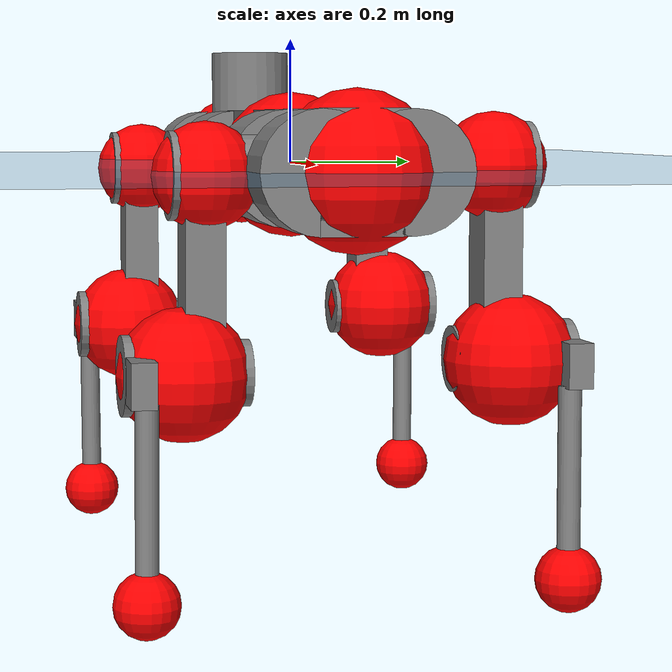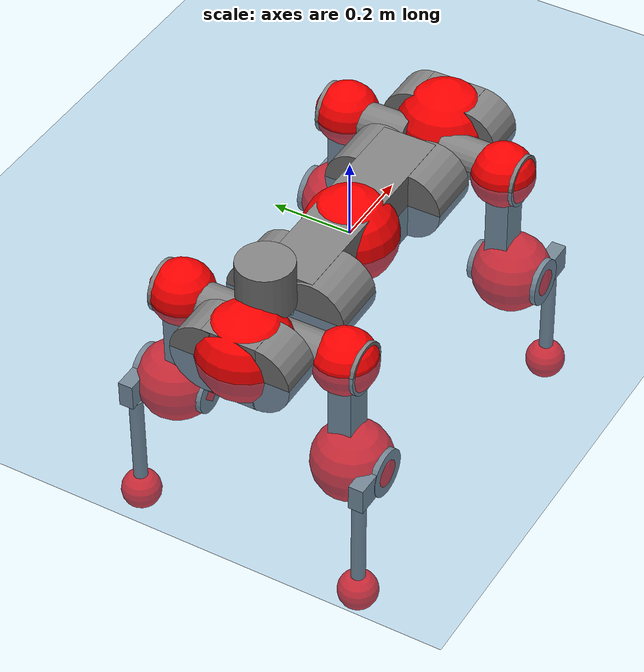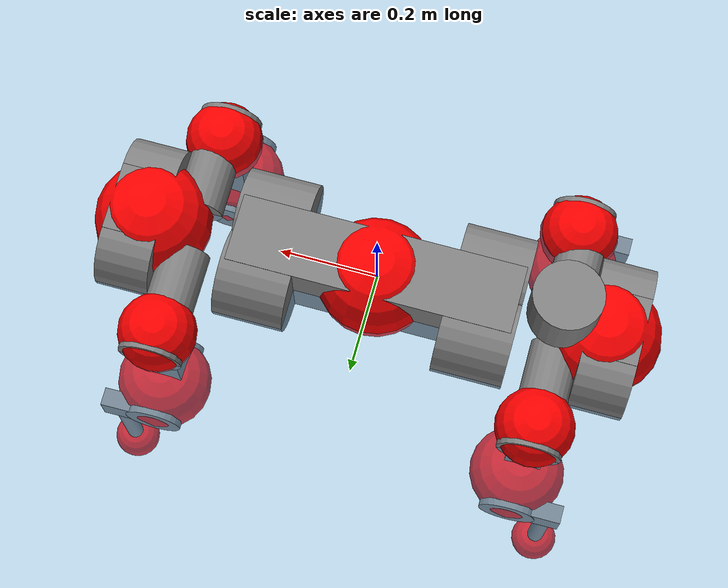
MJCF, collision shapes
<mujoco model="anymal_c">
  <compiler angle="radian" assetdir="assets" balanceinertia="true" inertiafromgeom="false"/>

  <option timestep="0.005" density="1.2" viscosity="2e-05"/>

  <size nkey="1"/>

  <visual>
    <quality shadowsize="8192"/>
    <map shadowclip="0.5"/>
  </visual>

  <default>
    <default class="/">
      <material specular="0" shininess="0.25"/>
      <geom contype="0" conaffinity="0" group="1" solref="-1000 -80"/>
      <site size="0.01 0.005 0.005" group="5"/>
      <general forcelimited="true" forcerange="-80 80" biastype="affine" gainprm="80" biasprm="0 -80 -2"/>
      <default class="anymal_c">
        <joint armature="0.01" damping="0.01" frictionloss="0.1"/>
        <default class="visual">
          <geom type="mesh" group="2"/>
          <default class="visual_zflip"/>
        </default>
        <default class="collision">
          <geom type="cylinder" group="3"/>
          <default class="foot">
            <geom size="0.03 0 0" type="sphere" condim="6" priority="1" friction="0.8 0.02 0.01" solimp="0.015 1 0.03"/>
          </default>
        </default>
      </default>
      <default class="reward_collision_sphere">
        <geom group="5" rgba="1 0 0 1"/>
      </default>
    </default>
  </default>

  <asset>
    <texture type="skybox" colorspace="auto" name="//unnamed_texture_0" builtin="gradient" rgb1="0.95 0.95 0.95" rgb2="0.95 0.95 0.95" width="100" height="600"/>
    <texture type="2d" colorspace="auto" name="texplane" builtin="checker" rgb1="0.345 0.575 0.748" rgb2="0.345 0.575 0.748" markrgb="1 1 1" width="512" height="512"/>
    <texture type="2d" colorspace="linear" name="base" file="base.png"/>
    <texture type="2d" colorspace="linear" name="top_shell" file="top_shell.png"/>
    <texture type="2d" colorspace="linear" name="bottom_shell" file="bottom_shell.png"/>
    <texture type="2d" colorspace="linear" name="remote" file="remote.png"/>
    <texture type="2d" colorspace="linear" name="hatch" file="hatch.png"/>
    <texture type="2d" colorspace="linear" name="handle" file="handle.png"/>
    <texture type="2d" colorspace="linear" name="face" file="face.png"/>
    <texture type="2d" colorspace="linear" name="battery" file="battery.png"/>
    <texture type="2d" colorspace="linear" name="lidar_cage" file="lidar_cage.png"/>
    <texture type="2d" colorspace="linear" name="depth_camera" file="depth_camera.png"/>
    <texture type="2d" colorspace="linear" name="wide_angle_camera" file="wide_angle_camera.png"/>
    <texture type="2d" colorspace="linear" name="lidar" file="lidar.png"/>
    <texture type="2d" colorspace="linear" name="drive" file="drive.png"/>
    <texture type="2d" colorspace="linear" name="hip_l" file="hip_l.png"/>
    <texture type="2d" colorspace="linear" name="shank_l" file="shank_l.png"/>
    <texture type="2d" colorspace="linear" name="foot" file="foot.png"/>
    <texture type="2d" colorspace="linear" name="thigh" file="thigh.png"/>
    <texture type="2d" colorspace="linear" name="shank_r" file="shank_r.png"/>
    <texture type="2d" colorspace="linear" name="hip_r" file="hip_r.png"/>
    <material name="MatPlane" class="/" texture="texplane" texuniform="true" texrepeat="2 2" specular="0.9" shininess="0.5"/>
    <material name="black_plastic" class="/" rgba="0.007 0.007 0.007 1"/>
    <material name="green" class="/" rgba="0.052 0.178 0.033 1"/>
    <material name="red" class="/" rgba="0.178 0.006 0.005 1"/>
    <material name="yellow" class="/" rgba="0.178 0.119 0.006 1"/>
    <material name="lwl" class="/" rgba="0.8 0.8 0.8 1"/>
    <material name="base" class="/" texture="base"/>
    <material name="top_shell" class="/" texture="top_shell"/>
    <material name="bottom_shell" class="/" texture="bottom_shell"/>
    <material name="hip_l" class="/" texture="hip_l"/>
    <material name="thigh" class="/" texture="thigh"/>
    <material name="shank_l" class="/" texture="shank_l"/>
    <material name="foot" class="/" texture="foot"/>
    <material name="hip_r" class="/" texture="hip_r"/>
    <material name="shank" class="/" texture="shank_r"/>
    <material name="hatch" class="/" texture="hatch"/>
    <material name="remote" class="/" texture="remote"/>
    <material name="handle" class="/" texture="handle"/>
    <material name="face" class="/" texture="face"/>
    <material name="depth_camera" class="/" texture="depth_camera"/>
    <material name="wide_angle_camera" class="/" texture="wide_angle_camera"/>
    <material name="battery" class="/" texture="battery"/>
    <material name="lidar_cage" class="/" texture="lidar_cage"/>
    <material name="lidar" class="/" texture="lidar"/>
    <material name="drive" class="/" texture="drive"/>
    <mesh name="base_0" class="/" file="base_0.obj"/>
    <mesh name="base_1" class="/" file="base_1.obj"/>
    <mesh name="base_2" class="/" file="base_2.obj"/>
    <mesh name="base_3" class="/" file="base_3.obj"/>
    <mesh name="base_4" class="/" file="base_4.obj"/>
    <mesh name="base_5" class="/" file="base_5.obj"/>
    <mesh name="top_shell" class="/" file="top_shell.obj"/>
    <mesh name="bottom_shell" class="/" file="bottom_shell.obj"/>
    <mesh name="remote" class="/" file="remote.obj"/>
    <mesh name="handle" class="/" file="handle.obj"/>
    <mesh name="face" class="/" file="face.obj"/>
    <mesh name="wide_angle_camera" class="/" file="wide_angle_camera.obj"/>
    <mesh name="depth_camera" class="/" file="depth_camera.obj"/>
    <mesh name="battery" class="/" file="battery.obj"/>
    <mesh name="lidar_cage" class="/" file="lidar_cage.obj"/>
    <mesh name="lidar" class="/" file="lidar.obj"/>
    <mesh name="drive" class="/" file="drive.obj"/>
    <mesh name="hip_l" class="/" file="hip_l.obj"/>
    <mesh name="thigh" class="/" file="thigh.obj"/>
    <mesh name="shank_l" class="/" file="shank_l.obj"/>
    <mesh name="foot" class="/" file="foot.obj"/>
    <mesh name="hip_r" class="/" file="hip_r.obj"/>
    <mesh name="hatch" class="/" file="hatch.obj"/>
    <mesh name="shank_r" class="/" file="shank_r.obj"/>
  </asset>

  <worldbody>
    <geom name="floor" class="/" size="100 100 0.125" type="plane" group="0" material="MatPlane"/>
    <light name="toplight_shadow" class="/" pos="0 0 5" dir="0.0990148 0.0990148 -0.990148" type="directional" ambient="0.04 0.04 0.04" diffuse="0.55 0.55 0.55" specular="0.12 0.12 0.12"/>
    <light name="toplight_fill" class="/" pos="0 0 5" dir="0.0990148 0.0990148 -0.990148" type="directional" castshadow="false" ambient="0.04 0.04 0.04" diffuse="0.3 0.3 0.3" specular="0.08 0.08 0.08"/>
    <body name="trunk" childclass="anymal_c" pos="0.00249584 0.00107283 -0.00376748" quat="0.999997 5.86607e-05 -0.00207421 0.00140776">
      <inertial pos="0.0161179 0.0104395 0.0554339" quat="0.50288 0.501446 0.503938 0.49164" mass="15.8177" diaginertia="0.738463 0.437607 0.222727"/>
      <joint name="//unnamed_joint_0" type="free" armature="0" damping="0" frictionloss="0"/>
      <geom name="//unnamed_geom_1" class="visual" material="green" mesh="base_0"/>
      <geom name="//unnamed_geom_2" class="visual" material="yellow" mesh="base_1"/>
      <geom name="//unnamed_geom_3" class="visual" material="red" mesh="base_2"/>
      <geom name="//unnamed_geom_4" class="visual" material="black_plastic" mesh="base_3"/>
      <geom name="//unnamed_geom_5" class="visual" material="lwl" mesh="base_4"/>
      <geom name="//unnamed_geom_6" class="visual" material="base" mesh="base_5"/>
      <geom name="trunk_1" class="collision" size="0.286912 0.0692547 0.0890418" type="box"/>
      <geom name="trunk_2" class="collision" size="0.0890418 0.0717281" pos="0.223067 0.065405 0" quat="0.707107 0 0.707107 0"/>
      <geom name="trunk_3" class="collision" size="0.0890418 0.0717281" pos="-0.223067 0.065405 0" quat="0.707107 0 0.707107 0"/>
      <geom name="trunk_4" class="collision" size="0.0890418 0.0717281" pos="0.223067 -0.065405 0" quat="0.707107 0 0.707107 0"/>
      <geom name="trunk_5" class="collision" size="0.0890418 0.0717281" pos="-0.223067 -0.065405 0" quat="0.707107 0 0.707107 0"/>
      <geom name="//unnamed_geom_12" class="visual" material="top_shell" mesh="top_shell"/>
      <geom name="//unnamed_geom_13" class="visual" material="bottom_shell" mesh="bottom_shell"/>
      <geom name="//unnamed_geom_14" class="visual" material="remote" mesh="remote"/>
      <geom name="//unnamed_geom_15" class="visual" material="handle" mesh="handle"/>
      <geom name="//unnamed_geom_16" class="visual" pos="0.42511 0 0" quat="1 0 0 0" material="face" mesh="face"/>
      <geom name="trunk_6" class="collision" size="0.0544144 0.0692547 0.0890418" pos="0.481518 0 0" type="box"/>
      <geom name="//unnamed_geom_18" class="collision" size="0.0890418 0.0544144" pos="0.481518 0.065405 0" quat="0.707107 0 0.707107 0"/>
      <geom name="//unnamed_geom_19" class="collision" size="0.0890418 0.0544144" pos="0.481518 -0.065405 0" quat="0.707107 0 0.707107 0"/>
      <geom name="//unnamed_geom_20" class="visual" pos="0.473466 0 -0.0293037" quat="0.965926 0 0.258819 0" material="depth_camera" mesh="depth_camera"/>
      <geom name="//unnamed_geom_21" class="visual" pos="0.526131 0 0.0150913" material="wide_angle_camera" mesh="wide_angle_camera"/>
      <geom name="//unnamed_geom_22" class="visual_zflip" pos="-0.42511 0 0" quat="0 0 0 1" material="face" mesh="face"/>
      <geom name="trunk_7" class="collision" size="0.0544144 0.0692547 0.0890418" pos="-0.481518 0 0" quat="0 0 0 1" type="box"/>
      <geom name="//unnamed_geom_24" class="collision" size="0.0890418 0.0544144" pos="-0.481518 -0.065405 0" quat="0 -0.707107 0 0.707107"/>
      <geom name="//unnamed_geom_25" class="collision" size="0.0890418 0.0544144" pos="-0.481518 0.065405 0" quat="0 -0.707107 0 0.707107"/>
      <geom name="//unnamed_geom_26" class="visual" pos="-0.473466 0 -0.0293037" quat="0 -0.258819 0 0.965926" material="depth_camera" mesh="depth_camera"/>
      <geom name="//unnamed_geom_27" class="visual_zflip" pos="-0.526131 0 0.0150913" quat="0 0 0 1" material="wide_angle_camera" mesh="wide_angle_camera"/>
      <geom name="//unnamed_geom_28" class="visual" material="battery" mesh="battery"/>
      <geom name="//unnamed_geom_29" class="visual" pos="0 0.070243 0.0294184" quat="0.683013 -0.183013 0.183013 0.683013" material="depth_camera" mesh="depth_camera"/>
      <geom name="//unnamed_geom_30" class="visual" pos="0 -0.070243 0.0294184" quat="0.683013 0.183013 0.183013 -0.683013" material="depth_camera" mesh="depth_camera"/>
      <geom name="//unnamed_geom_31" class="visual" pos="-0.373317 0 0.0740957" quat="1 0 0 0" material="lidar_cage" mesh="lidar_cage"/>
      <geom name="trunk_8" class="collision" size="0.0692547 0.0593612" pos="-0.373317 0 0.134582"/>
      <geom name="//unnamed_geom_33" class="visual" pos="-0.373317 -3.58454e-05 0.143353" quat="0.707107 0 0 -0.707107" material="lidar" mesh="lidar"/>
      <geom name="//unnamed_geom_34" class="visual" pos="0.307576 0.0971994 -1.27215e-09" quat="0.258819 0.965926 0 0" material="drive" mesh="drive"/>
      <geom name="//unnamed_geom_35" class="visual" pos="0.307576 -0.0971994 1.27215e-09" quat="0.258819 -0.965926 0 0" material="drive" mesh="drive"/>
      <geom name="//unnamed_geom_36" class="visual" pos="-0.307576 0.0971994 1.27215e-09" quat="0 0 0.965926 -0.258819" material="drive" mesh="drive"/>
      <geom name="//unnamed_geom_37" class="visual" pos="-0.307576 -0.0971994 -1.27215e-09" quat="0 0 -0.965926 -0.258819" material="drive" mesh="drive"/>
      <geom name="//unnamed_geom_38" class="visual" pos="0.118969 0 0.0735917" quat="1 0 0 0" material="hatch" mesh="hatch"/>
      <geom name="//unnamed_geom_39" class="reward_collision_sphere" size="0.118722"/>
      <geom name="//unnamed_geom_40" class="reward_collision_sphere" size="0.118722" pos="0.461519 0 0"/>
      <geom name="//unnamed_geom_41" class="reward_collision_sphere" size="0.118722" pos="-0.461519 0 0"/>
      <site name="imu" pos="0.197142 0.00863867 0.104402" size="0.00989353"/>
      <camera name="track" pos="0 -1.86872 0" quat="0.707107 0.707107 0 0" mode="trackcom"/>
      <camera name="ego_camera" pos="0.461519 0 -0.0403242" quat="-0.5 -0.5 0.5 0.5"/>
      <body name="LF_HIP" pos="0.316536 0.106618 0.00546364" quat="0.258747 0.965945 0.000203043 8.06054e-05">
        <inertial pos="0.0581543 -0.00545606 -0.00862865" quat="-0.129003 0.708013 -0.135052 0.681056" mass="2.92043" diaginertia="0.00791064 0.00458517 0.00404973"/>
        <joint name="LF_HAA" pos="0 0 0" axis="0.999977 -0.00600534 -0.0031398" stiffness="0.0378049" range="-0.718651 0.396275" armature="0.0104413" damping="0" frictionloss="0.136776"/>
        <geom name="//unnamed_geom_42" class="visual" pos="0 -7.48346e-05 1.22915e-05" quat="0.258819 -0.965926 0 0" material="hip_l" mesh="hip_l"/>
        <geom name="//unnamed_geom_43" class="visual" pos="0.0614333 -0.0732644 -0.0428447" quat="0.183013 -0.683013 0.683013 0.183013" material="drive" mesh="drive"/>
        <geom name="//unnamed_geom_44" class="collision" size="0.0494677 0.0692547" pos="0.0614332 -0.0111747 -0.00696096" quat="-0.353553 -0.612372 0.612372 -0.353553"/>
        <body name="LF_THIGH" pos="0.0678098 -0.0801774 -0.0475685" quat="0.183894 -0.678997 0.686576 0.18374">
          <inertial pos="0.0328292 0.000500199 -0.25385" quat="0.993484 -0.0475852 -0.0649591 0.0806521" mass="3.26481" diaginertia="0.0339908 0.0246438 0.00417433"/>
          <joint name="LF_HFE" pos="0 0 0" axis="0.999929 0.011644 -0.0023479" stiffness="0.0107793" range="-3.3513 2.98921" armature="0.0111349" damping="0" frictionloss="0.130752"/>
          <geom name="//unnamed_geom_45" class="visual" pos="0.0018153 2.86049e-06 0" quat="0.707107 0 0 -0.707107" material="thigh" mesh="thigh"/>
          <geom name="//unnamed_geom_46" class="collision" size="0.064308 0.0395741" pos="0.0410239 0 0" quat="0.5 0.5 -0.5 -0.5"/>
          <geom name="//unnamed_geom_47" class="collision" size="0.0371007 0.0296806 0.139809" pos="0.0307679 0 -0.142459" quat="0.707107 0 0 -0.707107" type="box"/>
          <geom name="//unnamed_geom_48" class="visual" pos="0.102867 0 -0.28731" quat="1 0 0 0" material="drive" mesh="drive"/>
          <geom name="//unnamed_geom_49" class="collision" size="0.0494677 0.0692547" pos="0.0310756 0 -0.28731" quat="0.707107 0 0.707107 0"/>
          <geom name="//unnamed_geom_50" class="reward_collision_sphere" size="0.0791483" pos="0.0256399 0 0"/>
          <body name="LF_SHANK" pos="0.10172 -0.0109206 -0.289255" quat="0.999999 -0.0010067 0.000197708 0.000187427">
            <inertial pos="0.00430205 -0.0589193 -0.0759391" quat="0.992603 -0.119754 0.000368013 -0.0199498" mass="0.588897" diaginertia="0.0131557 0.00668511 0.00115754"/>
            <joint name="LF_KFE" pos="0 0 0" axis="0.999999 -0.000958826 -0.00104324" stiffness="0.0510283" range="-3.28947 3.16649" armature="0.00828421" damping="0.0115801" frictionloss="0.105997"/>
            <geom name="//unnamed_geom_51" class="visual" pos="0.000591929 0.0031562 0" quat="0.707107 0 0 -0.707107" material="shank_l" mesh="shank_l"/>
            <geom name="LF_kfe_act" class="collision" size="0.0593612 0.0197871" pos="0.0205119 0 0" quat="0.5 0.5 -0.5 -0.5"/>
            <geom name="//unnamed_geom_53" class="collision" size="0.0568868 0.0333907 0.0187977" pos="0.0205119 -0.0537246 0" quat="0.5 0.5 -0.5 -0.5" type="box"/>
            <geom name="//unnamed_geom_54" class="visual" pos="0.0133839 -0.0811597 -0.340709" quat="0.382683 0 0 -0.92388" material="foot" mesh="foot"/>
            <geom name="LF_calf" class="collision" size="0.0173137 0.139748" pos="0.013384 -0.0821768 -0.170355" quat="0.707107 0 0 -0.707107"/>
            <geom name="LF_foot" class="foot" size="0.0321457" pos="0.013384 -0.0821768 -0.318027" quat="0.707107 0 0 -0.707107"/>
            <geom name="//unnamed_geom_57" class="reward_collision_sphere" size="0.0989353" pos="-0.0512798 0 0"/>
            <geom name="//unnamed_geom_58" class="reward_collision_sphere" size="0.0494677" pos="0.013384 -0.0821768 -0.318027"/>
            <site name="LF_foot" class="foot" pos="0.013384 -0.0821768 -0.318027" quat="0.707107 0 0 -0.707107" size="0.00989353"/>
          </body>
        </body>
      </body>
      <body name="RF_HIP" pos="0.319527 -0.0980274 0.00182034" quat="0.259278 -0.965803 -0.000294198 -2.80472e-05">
        <inertial pos="0.0654093 0.0280958 -0.000871959" quat="0.174233 0.695504 0.162973 0.677758" mass="2.64328" diaginertia="0.00732291 0.00296217 0.00374914"/>
        <joint name="RF_HAA" pos="0 0 0" axis="0.998896 0.0445252 0.0149649" range="-0.511644 0.699545" armature="0.00992227" damping="0.0473993" frictionloss="0.078912"/>
        <geom name="//unnamed_geom_59" class="visual" pos="0 7.4834e-05 1.22915e-05" quat="0.258819 0.965926 0 0" material="hip_r" mesh="hip_r"/>
        <geom name="//unnamed_geom_60" class="visual" pos="0.0614332 0.0732644 -0.0428447" quat="0.183013 0.683013 0.683013 -0.183013" material="drive" mesh="drive"/>
        <geom name="//unnamed_geom_61" class="collision" size="0.0494677 0.0692547" pos="0.0614332 0.0111747 -0.00696096" quat="-0.353553 0.612372 0.612372 0.353553"/>
        <body name="RF_THIGH" pos="0.0554029 0.0737248 -0.0322784" quat="0.187688 0.683324 0.68173 -0.181893">
          <inertial pos="0.0199131 0.00317834 -0.241255" quat="0.993296 0.0117003 -0.0956435 0.0638659" mass="2.68024" diaginertia="0.0380953 0.0243453 0.0037887"/>
          <joint name="RF_HFE" pos="0 0 0" axis="0.99998 0.00629697 0.000590989" stiffness="0.0190964" range="-3.21532 3.17136" armature="0.0131959" damping="0.00696447" frictionloss="0.0758418"/>
          <geom name="//unnamed_geom_62" class="visual" pos="0.0018153 2.86049e-06 0" quat="0.707107 0 0 -0.707107" material="thigh" mesh="thigh"/>
          <geom name="//unnamed_geom_63" class="collision" size="0.064308 0.0395741" pos="0.0410239 0 0" quat="0.5 0.5 0.5 0.5"/>
          <geom name="//unnamed_geom_64" class="collision" size="0.0371007 0.0296806 0.139809" pos="0.0307679 0 -0.142459" quat="0.707107 0 0 0.707107" type="box"/>
          <geom name="//unnamed_geom_65" class="visual" pos="0.102867 0 -0.28731" quat="1 0 0 0" material="drive" mesh="drive"/>
          <geom name="//unnamed_geom_66" class="collision" size="0.0494677 0.0692547" pos="0.0310756 0 -0.28731" quat="0.707107 0 0.707107 0"/>
          <geom name="//unnamed_geom_67" class="reward_collision_sphere" size="0.0791483" pos="0.0256399 0 0"/>
          <body name="RF_SHANK" pos="0.109511 0.00161462 -0.287883" quat="0.999995 -0.00296267 -0.000606329 0.00113517">
            <inertial pos="0.0145687 0.057135 -0.0812213" quat="0.99661 0.0626801 -0.0271003 0.0458841" mass="0.462682" diaginertia="0.00962803 0.00619944 0.00104957"/>
            <joint name="RF_KFE" pos="0 0 0" axis="0.999934 -0.00481463 -0.0103868" stiffness="0.0573096" range="-2.90191 3.27618" armature="0.00480105" damping="0" frictionloss="0.0738849"/>
            <geom name="//unnamed_geom_68" class="visual" pos="0.000591926 -0.00315619 0" quat="0.707107 0 0 0.707107" material="shank" mesh="shank_r"/>
            <geom name="RF_kfe_act" class="collision" size="0.0593612 0.0197871" pos="0.0205119 0 0" quat="0.5 0.5 0.5 0.5"/>
            <geom name="//unnamed_geom_70" class="collision" size="0.0568868 0.0333907 0.0187977" pos="0.0205119 0.0537246 0" quat="0.5 0.5 0.5 0.5" type="box"/>
            <geom name="//unnamed_geom_71" class="visual" pos="0.0133842 0.0811597 -0.340709" quat="0.382683 0 0 0.92388" material="foot" mesh="foot"/>
            <geom name="RF_calf" class="collision" size="0.0173137 0.139748" pos="0.013384 0.0821768 -0.170355" quat="0.707107 0 0 0.707107"/>
            <geom name="RF_foot" class="foot" size="0.0395338" pos="0.013384 0.0821768 -0.318027" quat="0.707107 0 0 0.707107"/>
            <geom name="//unnamed_geom_74" class="reward_collision_sphere" size="0.0989353" pos="-0.0512798 0 0"/>
            <geom name="//unnamed_geom_75" class="reward_collision_sphere" size="0.0494677" pos="0.013384 0.0821768 -0.318027"/>
            <site name="RF_foot" class="foot" pos="0.013384 0.0821768 -0.318027" quat="0.707107 0 0 0.707107" size="0.00989353"/>
          </body>
        </body>
      </body>
      <body name="LH_HIP" pos="-0.31829 0.105241 0.0102298" quat="-0.000115068 -0.000148263 0.965829 -0.259181">
        <inertial pos="0.0580944 0.00639685 0.00396892" quat="0.158736 0.672034 0.167276 0.703699" mass="2.28174" diaginertia="0.00467429 0.0030507 0.00313465"/>
        <joint name="LH_HAA" pos="0 0 0" axis="0.998901 -0.0112514 -0.045496" stiffness="0.0233994" range="-0.524226 0.644004" armature="0.0094179" damping="0.0621044" frictionloss="0.0977819"/>
        <geom name="//unnamed_geom_76" class="visual" pos="0 7.4834e-05 1.22915e-05" quat="-0.258819 -0.965926 0 0" material="hip_r" mesh="hip_r"/>
        <geom name="//unnamed_geom_77" class="visual" pos="0.0614332 0.0732644 -0.0428447" quat="0.183013 0.683013 0.683013 -0.183013" material="drive" mesh="drive"/>
        <geom name="//unnamed_geom_78" class="collision" size="0.0494677 0.0692547" pos="0.0614332 0.0111747 -0.00696096" quat="-0.353553 0.612372 0.612372 0.353553"/>
        <body name="LH_THIGH" pos="0.0591884 0.0726237 -0.0472927" quat="0.183209 0.684387 0.681838 -0.182061">
          <inertial pos="0.0451374 -0.00360083 -0.235335" quat="0.992018 -0.00920931 -0.0838307 0.0937436" mass="3.45945" diaginertia="0.0439403 0.0210803 0.00455369"/>
          <joint name="LH_HFE" pos="0 0 0" axis="1 -0.000216319 -8.18539e-05" range="-3.02495 3.29074" armature="0.00902305" damping="0.0506056" frictionloss="0.0951416"/>
          <geom name="//unnamed_geom_79" class="visual" pos="0.0018153 2.86049e-06 0" quat="0.707107 0 0 -0.707107" material="thigh" mesh="thigh"/>
          <geom name="//unnamed_geom_80" class="collision" size="0.064308 0.0395741" pos="0.0410239 0 0" quat="0.5 0.5 -0.5 -0.5"/>
          <geom name="//unnamed_geom_81" class="collision" size="0.0371007 0.0296806 0.139809" pos="0.0307679 0 -0.142459" quat="0.707107 0 0 -0.707107" type="box"/>
          <geom name="//unnamed_geom_82" class="visual" pos="0.102867 0 -0.28731" quat="1 0 0 0" material="drive" mesh="drive"/>
          <geom name="//unnamed_geom_83" class="collision" size="0.0494677 0.0692547" pos="0.0310756 0 -0.28731" quat="0.707107 0 0.707107 0"/>
          <geom name="//unnamed_geom_84" class="reward_collision_sphere" size="0.0791483" pos="0.0256399 0 0"/>
          <body name="LH_SHANK" pos="0.107359 -0.00416253 -0.284008" quat="1 -0.000201807 -0.000374883 -0.000253939">
            <inertial pos="-0.000178736 0.0465554 -0.0778527" quat="0.989083 0.144969 -0.0198853 0.0174452" mass="0.468844" diaginertia="0.0104833 0.00474411 0.000927234"/>
            <joint name="LH_KFE" pos="0 0 0" axis="0.999998 0.0015115 0.00131838" range="-3.3461 3.29882" armature="0.0042257" damping="0" frictionloss="0.147328"/>
            <geom name="//unnamed_geom_85" class="visual" pos="0.000591926 -0.00315619 0" quat="-0.707107 0 0 -0.707107" material="shank" mesh="shank_r"/>
            <geom name="LH_kfe_act" class="collision" size="0.0593612 0.0197871" pos="0.0205119 0 0" quat="0.5 0.5 -0.5 -0.5"/>
            <geom name="//unnamed_geom_87" class="collision" size="0.0568868 0.0333907 0.0187977" pos="0.0205119 0.0537246 0" quat="0.5 0.5 -0.5 -0.5" type="box"/>
            <geom name="//unnamed_geom_88" class="visual" pos="0.0133842 0.0811597 -0.340709" quat="-0.382683 0 0 -0.92388" material="foot" mesh="foot"/>
            <geom name="LH_calf" class="collision" size="0.0173137 0.139748" pos="0.013384 0.0821768 -0.170355" quat="0.707107 0 0 -0.707107"/>
            <geom name="LH_foot" class="foot" size="0.0249703" pos="0.013384 0.0821768 -0.318027" quat="0.707107 0 0 -0.707107"/>
            <geom name="//unnamed_geom_91" class="reward_collision_sphere" size="0.0989353" pos="-0.0512798 0 0"/>
            <geom name="//unnamed_geom_92" class="reward_collision_sphere" size="0.0494677" pos="0.013384 0.0821768 -0.318027"/>
            <site name="LH_foot" class="foot" pos="0.013384 0.0821768 -0.318027" quat="0.707107 0 0 -0.707107" size="0.00989353"/>
          </body>
        </body>
      </body>
      <body name="RH_HIP" pos="-0.321151 -0.0966215 -0.00458087" quat="-0.000136273 5.75334e-05 -0.965946 -0.258744">
        <inertial pos="0.0648655 -0.0204093 0.00384231" quat="-0.0629591 0.70329 -0.120653 0.697755" mass="2.75344" diaginertia="0.00783584 0.00415385 0.00395615"/>
        <joint name="RH_HAA" pos="0 0 0" axis="0.998387 -0.0493163 -0.0281448" stiffness="0.00180229" range="-0.502535 0.369861" armature="0.0122348" damping="0.0388367" frictionloss="0.0975468"/>
        <geom name="//unnamed_geom_93" class="visual" pos="0 -7.48346e-05 1.22915e-05" quat="-0.258819 0.965926 0 0" material="hip_l" mesh="hip_l"/>
        <geom name="//unnamed_geom_94" class="visual" pos="0.0614333 -0.0732644 -0.0428447" quat="-0.183013 0.683013 -0.683013 -0.183013" material="drive" mesh="drive"/>
        <geom name="//unnamed_geom_95" class="collision" size="0.0494677 0.0692547" pos="0.0614332 -0.0111747 -0.00696096" quat="0.353553 0.612372 -0.612372 0.353553"/>
        <body name="RH_THIGH" pos="0.0489912 -0.0716604 -0.031453" quat="-0.180903 0.683901 -0.681558 -0.187169">
          <inertial pos="0.0328841 -0.00662346 -0.249873" quat="0.993071 -0.000737647 -0.0829407 0.0832485" mass="3.59411" diaginertia="0.041529 0.0231182 0.0047775"/>
          <joint name="RH_HFE" pos="0 0 0" axis="0.999985 0.000612042 -0.00550986" range="-3.27528 3.20479" armature="0.0105261" damping="0" frictionloss="0.0922275"/>
          <geom name="//unnamed_geom_96" class="visual" pos="0.0018153 2.86049e-06 0" quat="0.707107 0 0 -0.707107" material="thigh" mesh="thigh"/>
          <geom name="//unnamed_geom_97" class="collision" size="0.064308 0.0395741" pos="0.0410239 0 0" quat="0.5 0.5 0.5 0.5"/>
          <geom name="//unnamed_geom_98" class="collision" size="0.0371007 0.0296806 0.139809" pos="0.0307679 0 -0.142459" quat="0.707107 0 0 0.707107" type="box"/>
          <geom name="//unnamed_geom_99" class="visual" pos="0.102867 0 -0.28731" quat="1 0 0 0" material="drive" mesh="drive"/>
          <geom name="//unnamed_geom_100" class="collision" size="0.0494677 0.0692547" pos="0.0310756 0 -0.28731" quat="0.707107 0 0.707107 0"/>
          <geom name="//unnamed_geom_101" class="reward_collision_sphere" size="0.0791483" pos="0.0256399 0 0"/>
          <body name="RH_SHANK" pos="0.100772 -0.00941845 -0.283046" quat="0.999983 0.0020227 0.00452591 -0.00301543">
            <inertial pos="-0.00395812 -0.0522334 -0.0840861" quat="0.99251 -0.12053 -0.00691886 0.0186554" mass="0.544486" diaginertia="0.012129 0.00653395 0.00126194"/>
            <joint name="RH_KFE" pos="0 0 0" axis="1 0.000804504 -5.63692e-05" range="-3.08778 2.91785" armature="0.0103928" damping="0" frictionloss="0.0742797"/>
            <geom name="//unnamed_geom_102" class="visual" pos="0.000591929 0.0031562 0" quat="0.707107 0 0 -0.707107" material="shank_l" mesh="shank_l"/>
            <geom name="RH_kfe_act" class="collision" size="0.0593612 0.0197871" pos="0.0205119 0 0" quat="0.5 0.5 0.5 0.5"/>
            <geom name="//unnamed_geom_104" class="collision" size="0.0568868 0.0333907 0.0187977" pos="0.0205119 -0.0537246 0" quat="0.5 0.5 0.5 0.5" type="box"/>
            <geom name="//unnamed_geom_105" class="visual" pos="0.0133839 -0.0811597 -0.340709" quat="0.382683 0 0 -0.92388" material="foot" mesh="foot"/>
            <geom name="RH_calf" class="collision" size="0.0173137 0.139748" pos="0.013384 -0.0821768 -0.170355" quat="0.707107 0 0 0.707107"/>
            <geom name="RH_foot" class="foot" size="0.0382838" pos="0.013384 -0.0821768 -0.318027" quat="0.707107 0 0 0.707107"/>
            <geom name="//unnamed_geom_108" class="reward_collision_sphere" size="0.0989353" pos="-0.0512798 0 0"/>
            <geom name="//unnamed_geom_109" class="reward_collision_sphere" size="0.0494677" pos="0.013384 -0.0821768 -0.318027"/>
            <site name="RH_foot" class="foot" pos="0.013384 -0.0821768 -0.318027" quat="0.707107 0 0 0.707107" size="0.00989353"/>
          </body>
        </body>
      </body>
    </body>
  </worldbody>

  <contact>
    <pair class="/" geom1="floor" geom2="LF_foot" name="//unnamed_contact_0"/>
    <pair class="/" geom1="floor" geom2="RF_foot" name="//unnamed_contact_1"/>
    <pair class="/" geom1="floor" geom2="LH_foot" name="//unnamed_contact_2"/>
    <pair class="/" geom1="floor" geom2="RH_foot" name="//unnamed_contact_3"/>
  </contact>

  <actuator>
    <general name="LF_HAA" class="/" joint="LF_HAA" forcerange="-106.126 106.126" gainprm="91.9195" biasprm="0 -91.9195 -2.28837"/>
    <general name="LF_HFE" class="/" joint="LF_HFE" forcerange="-115.252 115.252" gainprm="91.9195" biasprm="0 -91.9195 -2.28837"/>
    <general name="LF_KFE" class="/" joint="LF_KFE" forcerange="-89.9275 89.9275" gainprm="91.9195" biasprm="0 -91.9195 -2.28837"/>
    <general name="RF_HAA" class="/" joint="RF_HAA" forcerange="-83.984 83.984" gainprm="91.9195" biasprm="0 -91.9195 -2.28837"/>
    <general name="RF_HFE" class="/" joint="RF_HFE" forcerange="-55.0528 55.0528" gainprm="91.9195" biasprm="0 -91.9195 -2.28837"/>
    <general name="RF_KFE" class="/" joint="RF_KFE" forcerange="-83.8491 83.8491" gainprm="91.9195" biasprm="0 -91.9195 -2.28837"/>
    <general name="LH_HAA" class="/" joint="LH_HAA" forcerange="-77.6989 77.6989" gainprm="91.9195" biasprm="0 -91.9195 -2.28837"/>
    <general name="LH_HFE" class="/" joint="LH_HFE" forcerange="-104.474 104.474" gainprm="91.9195" biasprm="0 -91.9195 -2.28837"/>
    <general name="LH_KFE" class="/" joint="LH_KFE" forcerange="-67.6263 67.6263" gainprm="91.9195" biasprm="0 -91.9195 -2.28837"/>
    <general name="RH_HAA" class="/" joint="RH_HAA" forcerange="-81.2079 81.2079" gainprm="91.9195" biasprm="0 -91.9195 -2.28837"/>
    <general name="RH_HFE" class="/" joint="RH_HFE" forcerange="-48.5095 48.5095" gainprm="91.9195" biasprm="0 -91.9195 -2.28837"/>
    <general name="RH_KFE" class="/" joint="RH_KFE" forcerange="-73.7087 73.7087" gainprm="91.9195" biasprm="0 -91.9195 -2.28837"/>
  </actuator>

  <sensor>
    <gyro site="imu" name="imu_angular_velocity"/>
    <velocimeter site="imu" name="imu_linear_velocity"/>
    <framelinvel objtype="site" objname="LF_foot" name="LF_foot_global_linear_velocity"/>
    <framelinvel objtype="site" objname="RF_foot" name="RF_foot_global_linear_velocity"/>
    <framelinvel objtype="site" objname="LH_foot" name="LH_foot_global_linear_velocity"/>
    <framelinvel objtype="site" objname="RH_foot" name="RH_foot_global_linear_velocity"/>
  </sensor>

  <keyframe>
    <key name="home" qpos="0 0 0.55 1 0 0 0 0 0.4 -0.8 0 -0.4 0.8 0 -0.4 0.8 0 0.4 -0.8"/>
  </keyframe>
</mujoco>
